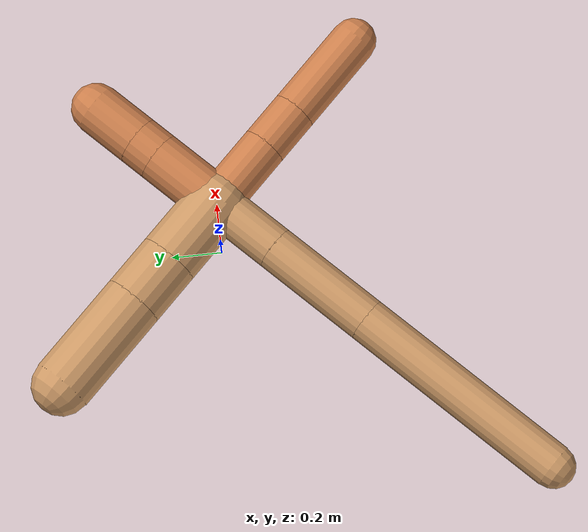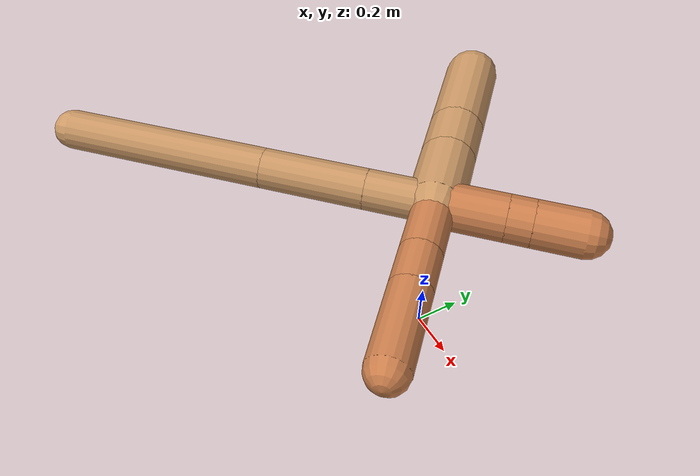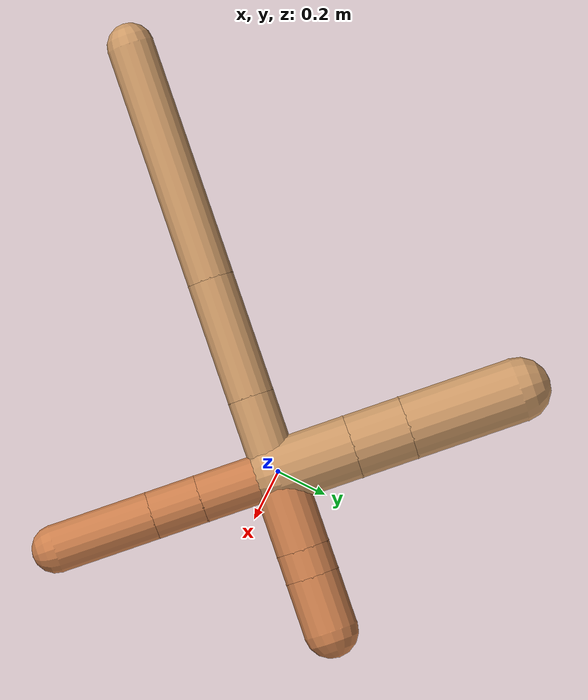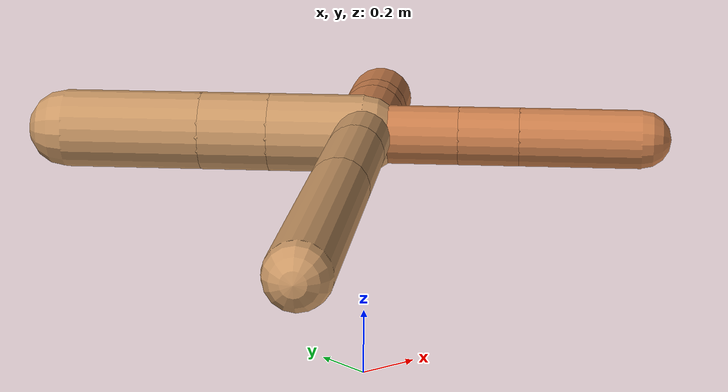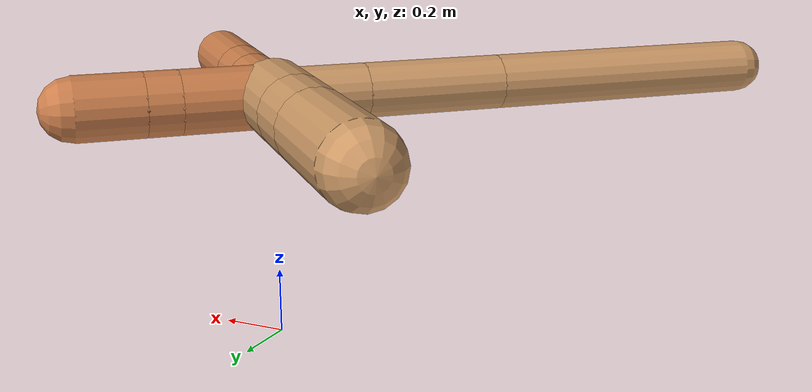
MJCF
<?xml version="1.0" ?>
<mujoco model="ant">

	<compiler angle="degree" coordinate="local" inertiafromgeom="true"/>

	<option integrator="RK4" timestep="0.01"/>

	<custom>

		<numeric data="0.0 0.0 0.55 1.0 0.0 0.0 0.0 0.0 1.0 0.0 -1.0 0.0 -1.0 0.0 1.0" name="init_qpos"/>

	</custom>

	<default>

		<joint armature="1" damping="1" limited="true"/>

		<geom conaffinity="0" condim="3" density="5.0" friction="1.5 0.1 0.1" margin="0.01" rgba="0.8 0.6 0.4 1"/>

	</default>

	<worldbody>

		<body name="torso" pos="0 0 0.75">

			<geom name="torso_geom" pos="0 0 0" size="0.10809087432498321" type="sphere"/>

			<!--joint armature="0" damping="0" limited="false" margin="0.01" name="root" pos="0 0 0" type="free"/-->

			<body name="front_left_leg" pos="0 0 0">

				<geom fromto="0 0 0 0.2 0.2 0" name="aux_1_geom" size="0.09786071210171313" type="capsule" rgba=".8 .5 .3 1"/>

				<body name="aux_1" pos="0.2 0.2 0">

					<joint axis="0 0 1" name="hip_1" pos="0.0 0.0 0.0" range="-40 40" type="hinge"/>

					<geom fromto="0 0 0 0.07204924814168327 0.07204924814168327 0" name="left_leg_geom" size="0.09786071210171313" type="capsule" rgba=".8 .5 .3 1"/>

					<body pos="0.07204924814168327 0.07204924814168327 0" name="front_left_foot">

						<joint axis="-1 1 0" name="ankle_1" pos="0.0 0.0 0.0" range="30 100" type="hinge"/>

						<geom fromto="0 0 0 0.14409849628336655 0.14409849628336655 0" name="left_ankle_geom" size="0.09786071210171313" type="capsule" rgba=".8 .5 .3 1"/>

					</body>

				</body>

			</body>

			<body name="front_right_leg" pos="0 0 0">

				<geom fromto="0 0 0 -0.2 0.2 0" name="aux_2_geom" size="0.11631355616937582" type="capsule"/>

				<body name="aux_2" pos="-0.2 0.2 0">

					<joint axis="0 0 1" name="hip_2" pos="0.0 0.0 0.0" range="-40 40" type="hinge"/>

					<geom fromto="0 0 0 -0.14628372471559112 0.14628372471559112 0" name="right_leg_geom" size="0.11631355616937582" type="capsule"/>

					<body pos="-0.14628372471559112 0.14628372471559112 0" name="front_right_foot">

						<joint axis="1 1 0" name="ankle_2" pos="0.0 0.0 0.0" range="-100 -30" type="hinge"/>

						<geom fromto="0 0 0 -0.29256744943118224 0.29256744943118224 0" name="right_ankle_geom" size="0.11631355616937582" type="capsule"/>

					</body>

				</body>

			</body>

			<body name="left_back_leg" pos="0 0 0">

				<geom fromto="0 0 0 -0.2 -0.2 0" name="aux_3_geom" size="0.08487636714326734" type="capsule"/>

				<body name="aux_3" pos="-0.2 -0.2 0">

					<joint axis="0 0 1" name="hip_3" pos="0.0 0.0 0.0" range="-40 40" type="hinge"/>

					<geom fromto="0 0 0 -0.3106634100736032 -0.3106634100736032 0" name="back_leg_geom" size="0.08487636714326734" type="capsule"/>

					<body pos="-0.3106634100736032 -0.3106634100736032 0" name="left_back_foot">

						<joint axis="-1 1 0" name="ankle_3" pos="0.0 0.0 0.0" range="-100 -30" type="hinge"/>

						<geom fromto="0 0 0 -0.6213268201472064 -0.6213268201472064 0" name="third_ankle_geom" size="0.08487636714326734" type="capsule"/>

					</body>

				</body>

			</body>

			<body name="right_back_leg" pos="0 0 0">

				<geom fromto="0 0 0 0.2 -0.2 0" name="aux_4_geom" size="0.08689231235094955" type="capsule" rgba=".8 .5 .3 1"/>

				<body name="aux_4" pos="0.2 -0.2 0">

					<joint axis="0 0 1" name="hip_4" pos="0.0 0.0 0.0" range="-40 40" type="hinge"/>

					<geom fromto="0 0 0 0.1275105184864032 -0.1275105184864032 0" name="rightback_leg_geom" size="0.08689231235094955" type="capsule" rgba=".8 .5 .3 1"/>

					<body pos="0.1275105184864032 -0.1275105184864032 0" name="right_back_foot">

						<joint axis="1 1 0" name="ankle_4" pos="0.0 0.0 0.0" range="30 100" type="hinge"/>

						<geom fromto="0 0 0 0.2550210369728064 -0.2550210369728064 0" name="fourth_ankle_geom" size="0.08689231235094955" type="capsule" rgba=".8 .5 .3 1"/>

					</body>

				</body>

			</body>

		</body>

	</worldbody>

	<actuator>

		<motor ctrllimited="true" ctrlrange="-1.0 1.0" joint="hip_4" gear="150"/>

		<motor ctrllimited="true" ctrlrange="-1.0 1.0" joint="ankle_4" gear="150"/>

		<motor ctrllimited="true" ctrlrange="-1.0 1.0" joint="hip_1" gear="150"/>

		<motor ctrllimited="true" ctrlrange="-1.0 1.0" joint="ankle_1" gear="150"/>

		<motor ctrllimited="true" ctrlrange="-1.0 1.0" joint="hip_2" gear="150"/>

		<motor ctrllimited="true" ctrlrange="-1.0 1.0" joint="ankle_2" gear="150"/>

		<motor ctrllimited="true" ctrlrange="-1.0 1.0" joint="hip_3" gear="150"/>

		<motor ctrllimited="true" ctrlrange="-1.0 1.0" joint="ankle_3" gear="150"/>

	</actuator>

</mujoco>
